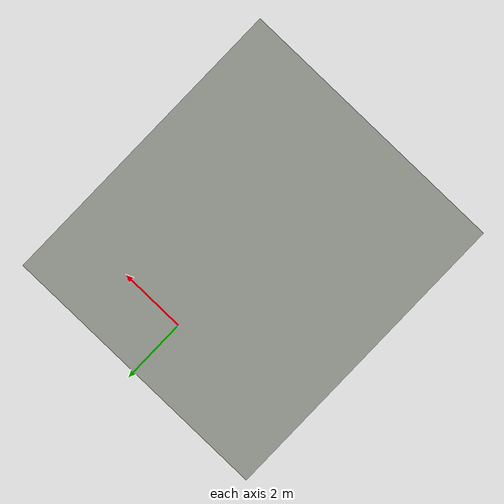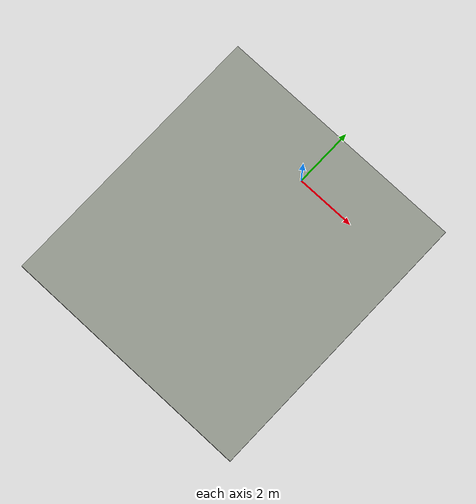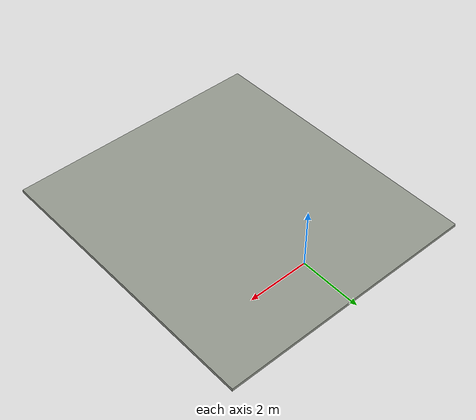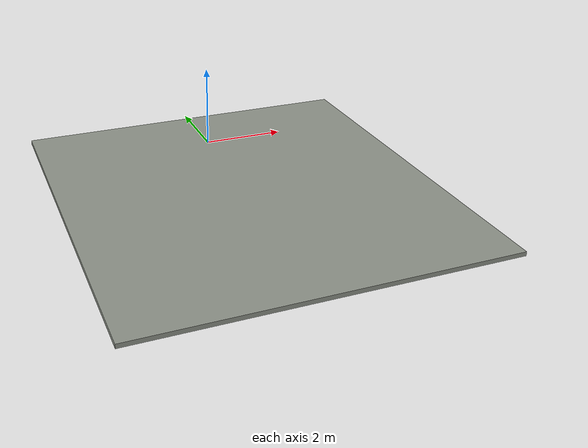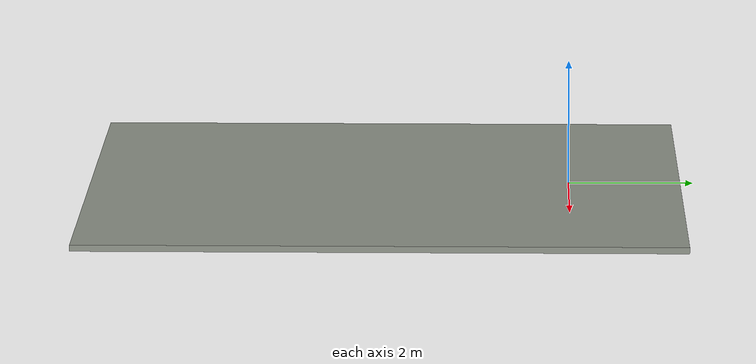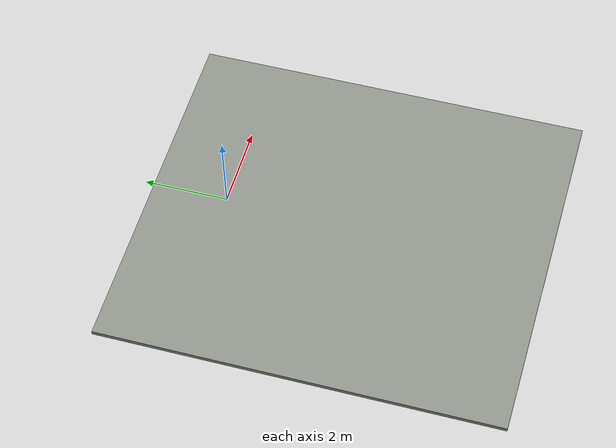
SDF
<sdf version="1.9">
 <world name="field">
  <model name="field_floor">
   <static>true</static>
   <pose>-0.0330 -2.9500 -0.05 0 0 0</pose>
   <link name="floor">
    <collision name="collision"><geometry><box><size>8.6000 9.5000 0.1</size></box></geometry></collision>
    <visual name="visual">
     <geometry><box><size>8.6000 9.5000 0.1</size></box></geometry>
     <material><ambient>0.48 0.50 0.46 1</ambient><diffuse>0.58 0.60 0.56 1</diffuse></material>
    </visual>
   </link>
  </model>
 </world>
</sdf>
